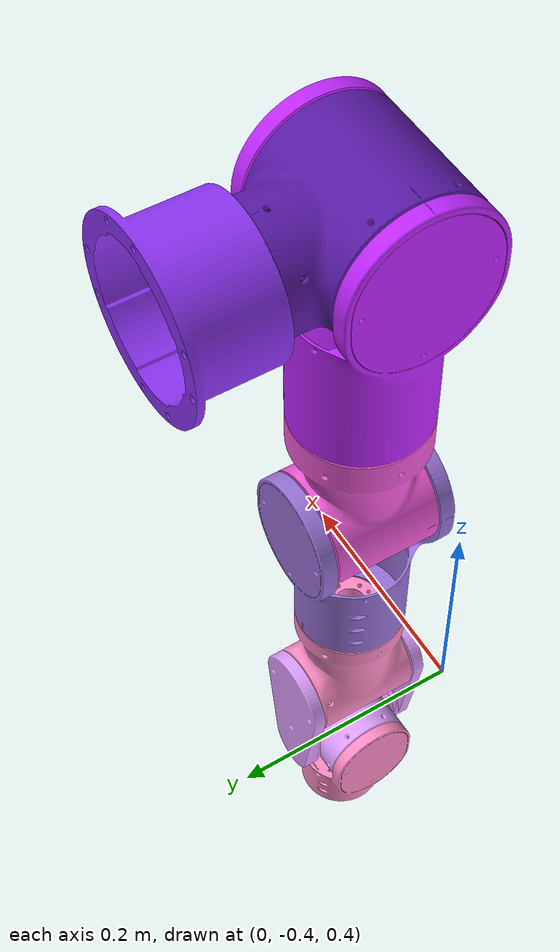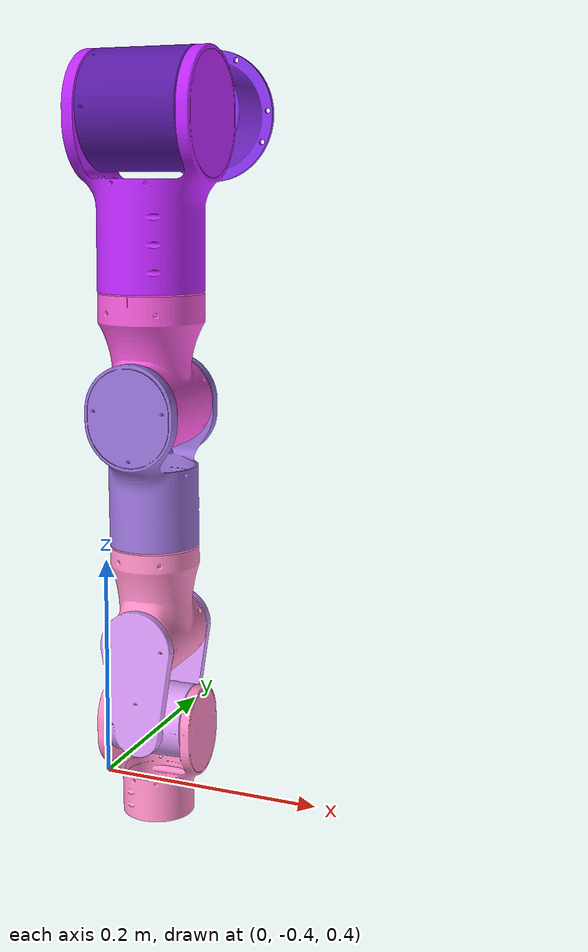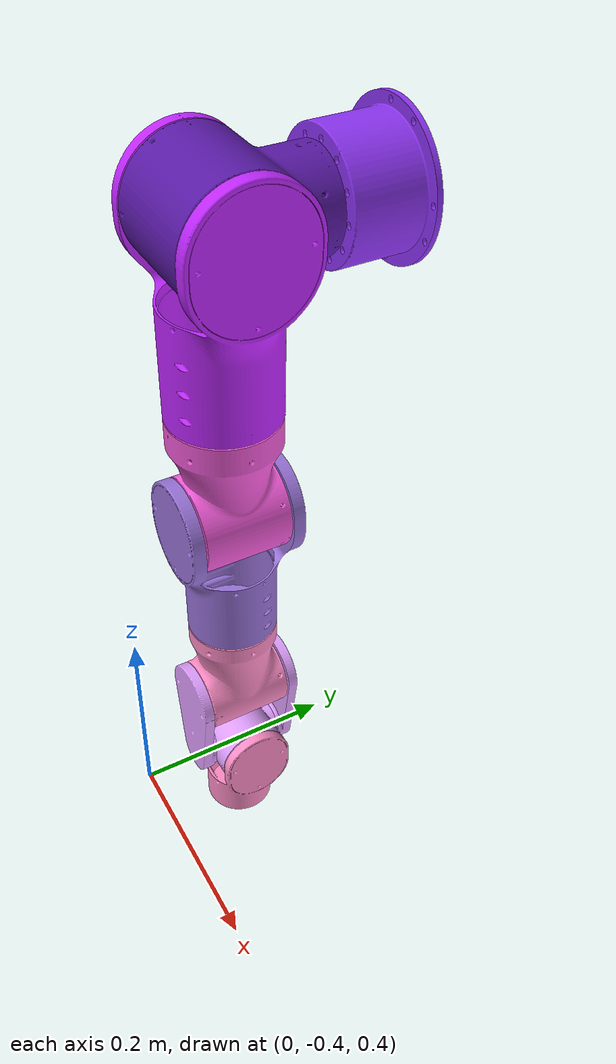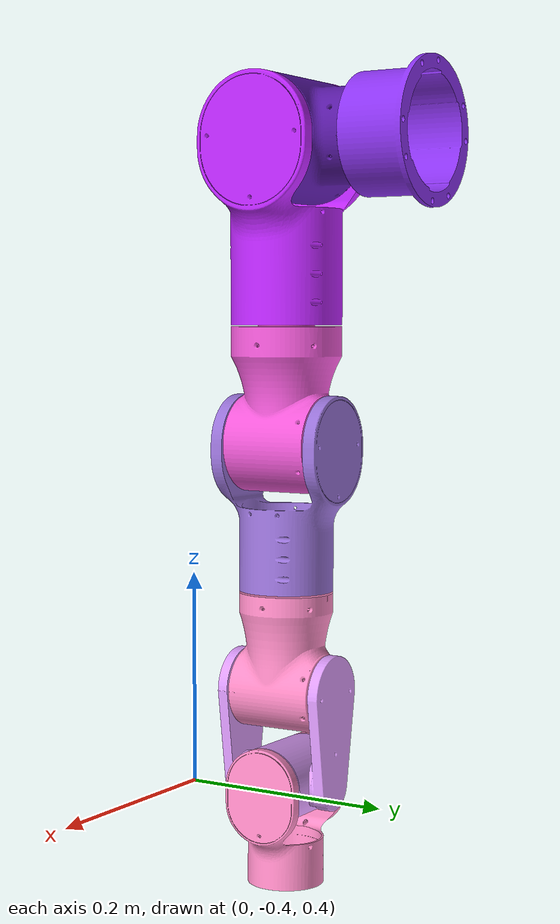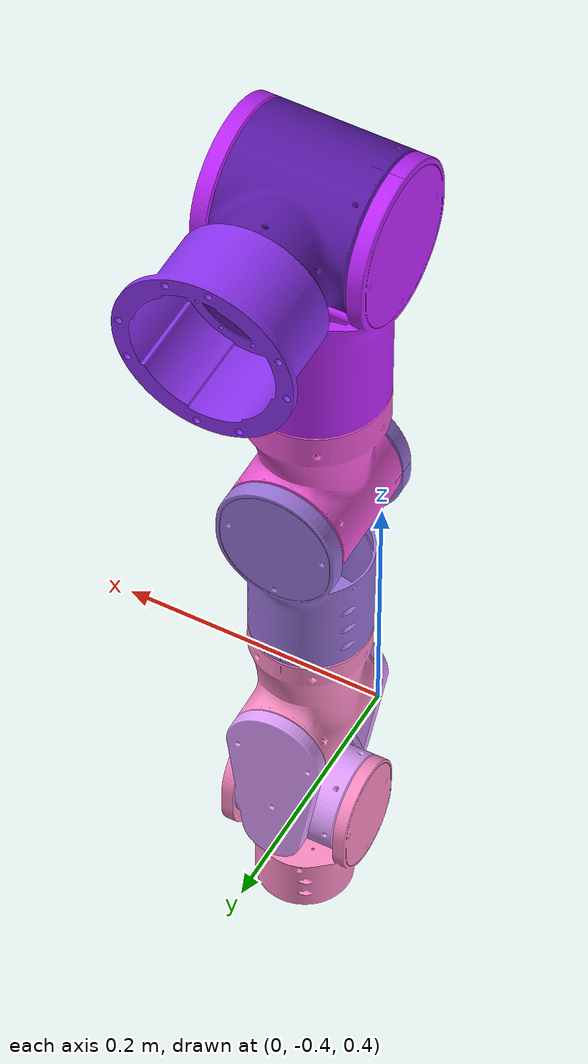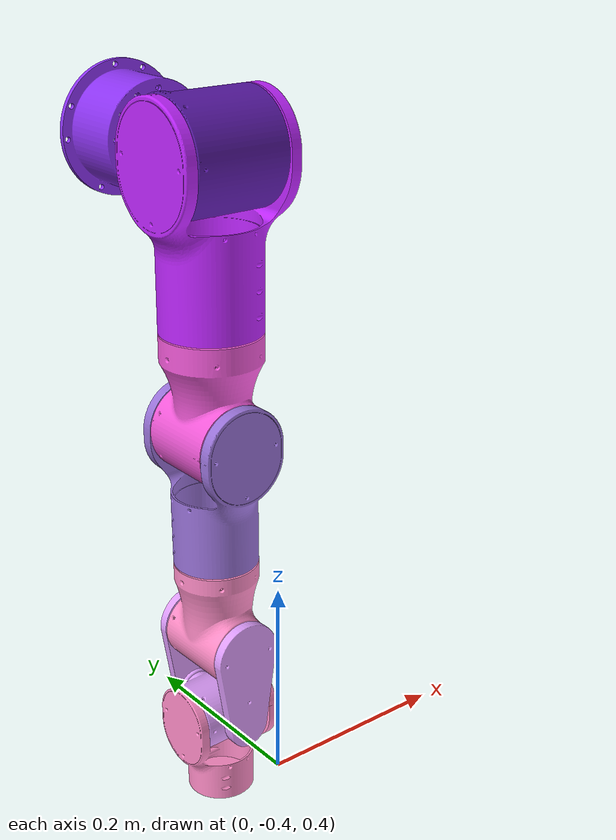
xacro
<?xml version="1.0"?>
<robot xmlns:xacro="http://www.ros.org/wiki/xacro" name="robot_arm">
    <xacro:arg name="initial_positions_file" default="initial_positions.yaml" />

    <!-- Import robot_arm urdf file -->
    <xacro:include filename="$(find robot_description)/urdf/robot.urdf.xacro" />

    <!-- Import control_xacro -->
    <xacro:include filename="robot_arm.ros2_control.xacro" />

    <xacro:robot_arm_ros2_control name="RobotArmSystem" initial_positions_file="$(arg initial_positions_file)"/>

</robot>

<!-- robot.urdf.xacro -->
<robot name="robot_arm" xmlns:xacro="http://www.ros.org/wiki/xacro">
        <xacro:property name="mesh_path" value="package://robot_description/meshes/visual" />
        <xacro:property name="collision_path" value="package://robot_description/meshes/collision" />

        <xacro:property name="effort_limit" value="10.0" />
        <xacro:property name="vel_limit" value="0.3" />
        <!-- 亮紫 -->
        <material name="purple_bright">
          <color rgba="0.55 0.20 0.95 1.0"/>
        </material>

        <!-- 深紫 -->
        <material name="purple_dark">
          <color rgba="0.35 0.10 0.65 1.0"/>
        </material>

        <!-- 偏赛博霓虹紫 -->
        <material name="purple_neon">
          <color rgba="0.75 0.15 1.0 1.0"/>
        </material>

        <!-- 柔和薰衣草紫 -->
        <material name="purple_lavender">
          <color rgba="0.60 0.45 0.85 1.0"/>
        </material>

        <!-- 粉紫 -->
        <material name="pink_purple">
          <color rgba="0.95 0.35 0.85 1.0"/>
        </material>

        <!-- 樱花粉 -->
        <material name="pink_soft">
          <color rgba="1.00 0.55 0.78 1.0"/>
        </material>

        <!-- 深玫粉 -->
        <material name="pink_deep">
          <color rgba="0.85 0.12 0.55 1.0"/>
        </material>

        <!-- 淡粉紫 -->
        <material name="pink_lavender">
          <color rgba="0.88 0.62 1.00 1.0"/>
        </material>

  <link name="world"/>

  <joint name="world_to_base" type="fixed">
    <parent link="world"/>
    <child link="base_link"/>
    <origin xyz="0 -0.15 1" rpy="-1.57079633 0 0"/>
  </joint>
  <link name="base_link">
    <inertial>
      <mass value="0.6848733"/>
      <origin xyz="-0.00000172 -0.00002155 -0.03206467" rpy="0 0 0"/>
      <inertia ixx="0.00136018" ixy="3e-8" ixz="-4e-8" iyy="0.00136015" iyz="7e-8" izz="0.00194403"/>
    </inertial>
    <visual>
      <origin xyz="0 0 0" rpy="0 0 0"/>
      <geometry>
        <mesh filename="${mesh_path}/base_link.stl"/>
      </geometry>
      <material name="purple_bright"/>
    </visual>
    <collision>
      <origin xyz="0 0 0" rpy="0 0 0"/>
      <geometry>
        <mesh filename="${collision_path}/base_link.stl"/>
      </geometry>
    </collision>
  </link>
  <link name="Link_1">
    <inertial>
      <mass value="1.37233072"/>
      <origin xyz="-0.00569499 -0.00000246 -0.06017679" rpy="0 0 0"/>
      <inertia ixx="0.00445498" ixy="-5e-8" ixz="-0.00012295" iyy="0.00437075" iyz="-4e-8" izz="0.00323998"/>
    </inertial>
    <visual>
      <origin xyz="0 0 0" rpy="0 0 0"/>
      <geometry>
        <mesh filename="${mesh_path}/Link_1.stl"/>
      </geometry>
      <material name="purple_dark"/>
    </visual>
    <collision>
      <origin xyz="0 0 0" rpy="0 0 0"/>
      <geometry>
        <mesh filename="${collision_path}/Link_1.stl"/>
      </geometry>
    </collision>
  </link>
  <link name="Link_2">
    <inertial>
      <mass value="2.09421844"/>
      <origin xyz="-0.00000199 0.05824111 0.03601944" rpy="0 0 0"/>
      <inertia ixx="0.01337874" ixy="-3e-8" ixz="-2.2e-7" iyy="0.00635046" iyz="0.00015606" izz="0.01097094"/>
    </inertial>
    <visual>
      <origin xyz="0 0 0" rpy="0 0 0"/>
      <geometry>
        <mesh filename="${mesh_path}/Link_2.stl"/>
      </geometry>
      <material name="purple_neon"/>
    </visual>
    <collision>
      <origin xyz="0 0 0" rpy="0 0 0"/>
      <geometry>
        <mesh filename="${collision_path}/Link_2.stl"/>
      </geometry>
    </collision>
  </link>
  <link name="Link_3">
    <inertial>
      <mass value="1.60813502"/>
      <origin xyz="0.00339437 -8.3e-7 0.05720242" rpy="0 0 0"/>
      <inertia ixx="0.00503976" ixy="2e-8" ixz="-0.00023017" iyy="0.00506692" iyz="1e-7" izz="0.00278422"/>
    </inertial>
    <visual>
      <origin xyz="0 0 0" rpy="0 0 0"/>
      <geometry>
        <mesh filename="${mesh_path}/Link_3.stl"/>
      </geometry>
      <material name="pink_purple"/>
    </visual>
    <collision>
      <origin xyz="0 0 0" rpy="0 0 0"/>
      <geometry>
        <mesh filename="${collision_path}/Link_3.stl"/>
      </geometry>
    </collision>
  </link>
  <link name="Link_4">
    <inertial>
      <mass value="1.29019472"/>
      <origin xyz="0.0005366 0.04778455 -0.02851022" rpy="0 0 0"/>
      <inertia ixx="0.00572076" ixy="-0.00003273" ixz="6e-7" iyy="0.00280375" iyz="0.000052" izz="0.00453418"/>
    </inertial>
    <visual>
      <origin xyz="0 0 0" rpy="0 0 0"/>
      <geometry>
        <mesh filename="${mesh_path}/Link_4.stl"/>
      </geometry>
      <material name="purple_lavender"/>
    </visual>
    <collision>
      <origin xyz="0 0 0" rpy="0 0 0"/>
      <geometry>
        <mesh filename="${collision_path}/Link_4.stl"/>
      </geometry>
    </collision>
  </link>
  <link name="Link_5">
    <inertial>
      <mass value="1.07862267"/>
      <origin xyz="-0.00004565 -0.00312436 0.05810621" rpy="0 0 0"/>
      <inertia ixx="0.00262102" ixy="-0.00000232" ixz="0.00000195" iyy="0.00246395" iyz="0.00013197" izz="0.00146721"/>
    </inertial>
    <visual>
      <origin xyz="0 0 0" rpy="0 0 0"/>
      <geometry>
        <mesh filename="${mesh_path}/Link_5.stl"/>
      </geometry>
      <material name="pink_soft"/>
    </visual>
    <collision>
      <origin xyz="0 0 0" rpy="0 0 0"/>
      <geometry>
        <mesh filename="${collision_path}/Link_5.stl"/>
      </geometry>
    </collision>
  </link>
  <link name="Link_6">
    <inertial>
      <mass value="1.16555846"/>
      <origin xyz="-0.00364518 0.05111449 -0.03051756" rpy="0 0 0"/>
      <inertia ixx="0.00376156" ixy="0.00014483" ixz="-0.00000143" iyy="0.002237" iyz="0.00001982" izz="0.00271092"/>
    </inertial>
    <visual>
      <origin xyz="0 0 0" rpy="0 0 0"/>
      <geometry>
        <mesh filename="${mesh_path}/Link_6.stl"/>
      </geometry>
      <material name="pink_lavender"/>
    </visual>
    <collision>
      <origin xyz="0 0 0" rpy="0 0 0"/>
      <geometry>
        <mesh filename="${collision_path}/Link_6.stl"/>
      </geometry>
    </collision>
  </link>
  <link name="Link_7">
    <inertial>
      <mass value="0.70606667"/>
      <origin xyz="7.1e-7 0.03648046 -0.04115437" rpy="0 0 0"/>
      <inertia ixx="0.0020359" ixy="2e-8" ixz="3e-8" iyy="0.00119426" iyz="-0.00006858" izz="0.00139949"/>
    </inertial>
    <visual>
      <origin xyz="0 0 0" rpy="0 0 0"/>
      <geometry>
        <mesh filename="${mesh_path}/Link_7.stl"/>
      </geometry>
      <material name="pink_soft"/>
    </visual>
    <collision>
      <origin xyz="0 0 0" rpy="0 0 0"/>
      <geometry>
        <mesh filename="${collision_path}/Link_7.stl"/>
      </geometry>
    </collision>
  </link>
  <link name="eeflink"/>

  <joint name="Link_7_to_eeflink" type="fixed">
    <parent link="Link_7"/>
    <child link="eeflink"/>
    <origin xyz="0 0.15 -0.035" rpy="0 0 0"/>
  </joint>
  <joint name="Joint_1" type="revolute">
    <parent link="base_link"/>
    <child link="Link_1"/>
    <origin xyz="0 -0.00002439 -0.0732" rpy="0 0 0"/>
    <axis xyz="0 0 1"/>
    <limit lower="-3.14159" upper="3.14159" effort="${effort_limit}" velocity="${vel_limit}"/>
  </joint>
  <joint name="Joint_2" type="revolute">
    <parent link="Link_1"/>
    <child link="Link_2"/>
    <origin xyz="-0.036 0 -0.076" rpy="0 1.57079633 0"/>
    <axis xyz="0 0 1"/>
    <limit lower="-3.14159" upper="3.14159" effort="${effort_limit}" velocity="${vel_limit}"/>
  </joint>
  <joint name="Joint_3" type="revolute">
    <parent link="Link_2"/>
    <child link="Link_3"/>
    <origin xyz="0 0.1745 0.035" rpy="1.57079633 0 -3.14159265"/>
    <axis xyz="0 0 1"/>
    <limit lower="-3.14159" upper="3.14159" effort="${effort_limit}" velocity="${vel_limit}"/>
  </joint>
  <joint name="Joint_4" type="revolute">
    <parent link="Link_3"/>
    <child link="Link_4"/>
    <origin xyz="0.03 0 0.09950002" rpy="1.57079633 0 1.57079633"/>
    <axis xyz="0 0 1"/>
    <limit lower="-3.14159" upper="3.14159" effort="${effort_limit}" velocity="${vel_limit}"/>
  </joint>
  <joint name="Joint_5" type="revolute">
    <parent link="Link_4"/>
    <child link="Link_5"/>
    <origin xyz="0.00145727 0.1296918 -0.029" rpy="-1.57079633 0 -0.01123597"/>
    <axis xyz="0 0 1"/>
    <limit lower="-3.14159" upper="3.14159" effort="${effort_limit}" velocity="${vel_limit}"/>
  </joint>
  <joint name="Joint_6" type="revolute">
    <parent link="Link_5"/>
    <child link="Link_6"/>
    <origin xyz="-0.00047585 -0.03199646 0.0973" rpy="1.57079633 -0.01123473 -0.01487071"/>
    <axis xyz="0 0 1"/>
    <limit lower="-3.14159" upper="3.14159" effort="${effort_limit}" velocity="${vel_limit}"/>
  </joint>
  <joint name="Joint_7" type="revolute">
    <parent link="Link_6"/>
    <child link="Link_7"/>
    <origin xyz="-0.03805384 0.08443284 -0.03085001" rpy="0 -1.57079633 -0.01123473"/>
    <axis xyz="0 0 1"/>
    <limit lower="-3.14159" upper="3.14159" effort="${effort_limit}" velocity="${vel_limit}"/>
  </joint>

</robot>
